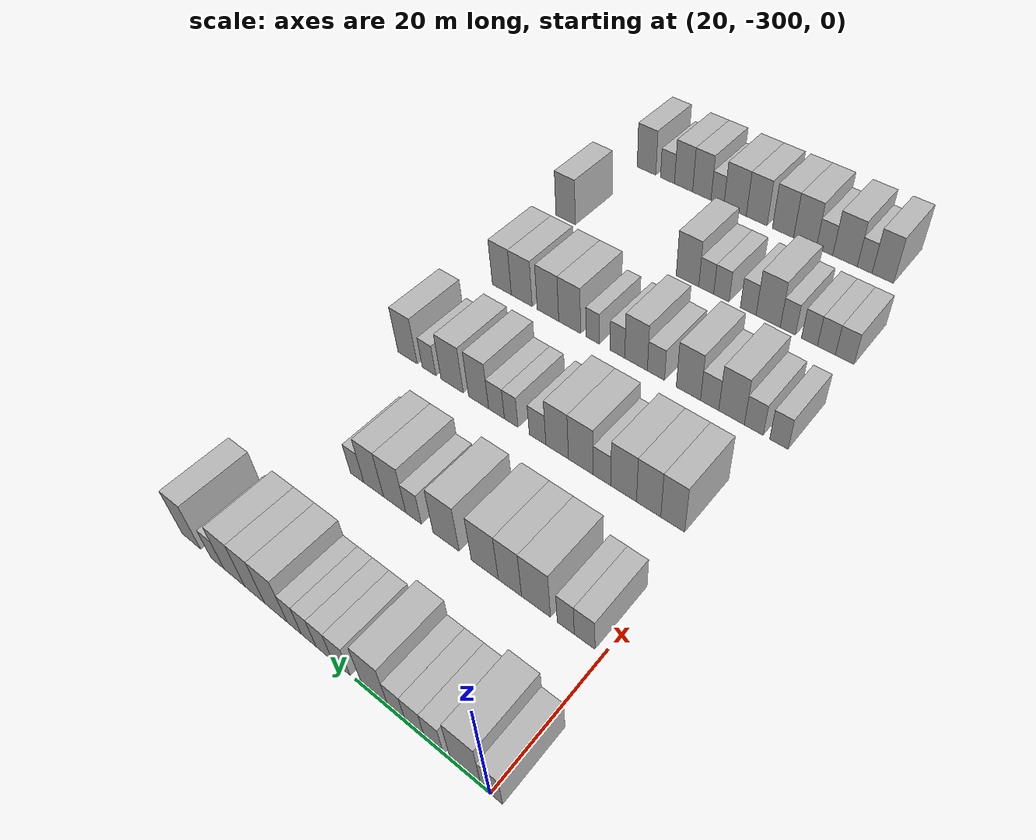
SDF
<sdf version="1.6">
 <world name="default">
  <model name="building_13">
   <static>1</static>
   <pose>25.0000 -300.2134 0 0.000000 0.000000 0.000000</pose>
   <link name="link">
    <pose>0 0 3.00 0 0 0</pose>
    <collision name="collision"><geometry><box><size>10.0000 2.9440 6.0000</size></box></geometry></collision>
    <visual name="visual">
     <cast_shadows>0</cast_shadows>
     <geometry><box><size>10.0000 2.9440 6.0000</size></box></geometry>
     <material>
      <script>
       <uri>model://HANNAS_wall/materials/scripts</uri>
       <uri>model://HANNAS_wall/materials/textures</uri>
       <name>vrc/HANNAS_wall</name>
      </script>
     </material>
    </visual>
   </link>
  </model>
  <model name="building_14">
   <static>1</static>
   <pose>25.0000 -296.6027 0 0.000000 0.000000 0.000000</pose>
   <link name="link">
    <pose>0 0 4.50 0 0 0</pose>
    <collision name="collision"><geometry><box><size>10.0000 4.2774 9.0000</size></box></geometry></collision>
    <visual name="visual">
     <cast_shadows>0</cast_shadows>
     <geometry><box><size>10.0000 4.2774 9.0000</size></box></geometry>
     <material>
      <script>
       <uri>model://HANNAS_wall/materials/scripts</uri>
       <uri>model://HANNAS_wall/materials/textures</uri>
       <name>vrc/HANNAS_wall</name>
      </script>
     </material>
    </visual>
   </link>
  </model>
  <model name="building_15">
   <static>1</static>
   <pose>25.0000 -292.1122 0 0.000000 0.000000 0.000000</pose>
   <link name="link">
    <pose>0 0 3.00 0 0 0</pose>
    <collision name="collision"><geometry><box><size>10.0000 2.7037 6.0000</size></box></geometry></collision>
    <visual name="visual">
     <cast_shadows>0</cast_shadows>
     <geometry><box><size>10.0000 2.7037 6.0000</size></box></geometry>
     <material>
      <script>
       <uri>model://HANNAS_wall/materials/scripts</uri>
       <uri>model://HANNAS_wall/materials/textures</uri>
       <name>vrc/HANNAS_wall</name>
      </script>
     </material>
    </visual>
   </link>
  </model>
  <model name="building_16">
   <static>1</static>
   <pose>25.0000 -289.3489 0 0.000000 0.000000 0.000000</pose>
   <link name="link">
    <pose>0 0 3.00 0 0 0</pose>
    <collision name="collision"><geometry><box><size>10.0000 2.8229 6.0000</size></box></geometry></collision>
    <visual name="visual">
     <cast_shadows>0</cast_shadows>
     <geometry><box><size>10.0000 2.8229 6.0000</size></box></geometry>
     <material>
      <script>
       <uri>model://HANNAS_wall/materials/scripts</uri>
       <uri>model://HANNAS_wall/materials/textures</uri>
       <name>vrc/HANNAS_wall</name>
      </script>
     </material>
    </visual>
   </link>
  </model>
  <model name="building_17">
   <static>1</static>
   <pose>25.0000 -286.6313 0 0.000000 0.000000 0.000000</pose>
   <link name="link">
    <pose>0 0 3.00 0 0 0</pose>
    <collision name="collision"><geometry><box><size>10.0000 2.6121 6.0000</size></box></geometry></collision>
    <visual name="visual">
     <cast_shadows>0</cast_shadows>
     <geometry><box><size>10.0000 2.6121 6.0000</size></box></geometry>
     <material>
      <script>
       <uri>model://HANNAS_wall/materials/scripts</uri>
       <uri>model://HANNAS_wall/materials/textures</uri>
       <name>vrc/HANNAS_wall</name>
      </script>
     </material>
    </visual>
   </link>
  </model>
  <model name="building_18">
   <static>1</static>
   <pose>25.0000 -283.2771 0 0.000000 0.000000 0.000000</pose>
   <link name="link">
    <pose>0 0 4.50 0 0 0</pose>
    <collision name="collision"><geometry><box><size>10.0000 4.0963 9.0000</size></box></geometry></collision>
    <visual name="visual">
     <cast_shadows>0</cast_shadows>
     <geometry><box><size>10.0000 4.0963 9.0000</size></box></geometry>
     <material>
      <script>
       <uri>model://HANNAS_wall/materials/scripts</uri>
       <uri>model://HANNAS_wall/materials/textures</uri>
       <name>vrc/HANNAS_wall</name>
      </script>
     </material>
    </visual>
   </link>
  </model>
  <model name="building_19">
   <static>1</static>
   <pose>25.0000 -277.7776 0 0.000000 0.000000 0.000000</pose>
   <link name="link">
    <pose>0 0 3.00 0 0 0</pose>
    <collision name="collision"><geometry><box><size>10.0000 2.9027 6.0000</size></box></geometry></collision>
    <visual name="visual">
     <cast_shadows>0</cast_shadows>
     <geometry><box><size>10.0000 2.9027 6.0000</size></box></geometry>
     <material>
      <script>
       <uri>model://HANNAS_wall/materials/scripts</uri>
       <uri>model://HANNAS_wall/materials/textures</uri>
       <name>vrc/HANNAS_wall</name>
      </script>
     </material>
    </visual>
   </link>
  </model>
  <model name="building_20">
   <static>1</static>
   <pose>25.0000 -274.9839 0 0.000000 0.000000 0.000000</pose>
   <link name="link">
    <pose>0 0 3.00 0 0 0</pose>
    <collision name="collision"><geometry><box><size>10.0000 2.6849 6.0000</size></box></geometry></collision>
    <visual name="visual">
     <cast_shadows>0</cast_shadows>
     <geometry><box><size>10.0000 2.6849 6.0000</size></box></geometry>
     <material>
      <script>
       <uri>model://HANNAS_wall/materials/scripts</uri>
       <uri>model://HANNAS_wall/materials/textures</uri>
       <name>vrc/HANNAS_wall</name>
      </script>
     </material>
    </visual>
   </link>
  </model>
  <model name="building_21">
   <static>1</static>
   <pose>25.0000 -272.4067 0 0.000000 0.000000 0.000000</pose>
   <link name="link">
    <pose>0 0 3.00 0 0 0</pose>
    <collision name="collision"><geometry><box><size>10.0000 2.4694 6.0000</size></box></geometry></collision>
    <visual name="visual">
     <cast_shadows>0</cast_shadows>
     <geometry><box><size>10.0000 2.4694 6.0000</size></box></geometry>
     <material>
      <script>
       <uri>model://HANNAS_wall/materials/scripts</uri>
       <uri>model://HANNAS_wall/materials/textures</uri>
       <name>vrc/HANNAS_wall</name>
      </script>
     </material>
    </visual>
   </link>
  </model>
  <model name="building_22">
   <static>1</static>
   <pose>25.0000 -269.9528 0 0.000000 0.000000 0.000000</pose>
   <link name="link">
    <pose>0 0 3.00 0 0 0</pose>
    <collision name="collision"><geometry><box><size>10.0000 2.4384 6.0000</size></box></geometry></collision>
    <visual name="visual">
     <cast_shadows>0</cast_shadows>
     <geometry><box><size>10.0000 2.4384 6.0000</size></box></geometry>
     <material>
      <script>
       <uri>model://HANNAS_wall/materials/scripts</uri>
       <uri>model://HANNAS_wall/materials/textures</uri>
       <name>vrc/HANNAS_wall</name>
      </script>
     </material>
    </visual>
   </link>
  </model>
  <model name="building_23">
   <static>1</static>
   <pose>25.0000 -266.7361 0 0.000000 0.000000 0.000000</pose>
   <link name="link">
    <pose>0 0 4.50 0 0 0</pose>
    <collision name="collision"><geometry><box><size>10.0000 3.9950 9.0000</size></box></geometry></collision>
    <visual name="visual">
     <cast_shadows>0</cast_shadows>
     <geometry><box><size>10.0000 3.9950 9.0000</size></box></geometry>
     <material>
      <script>
       <uri>model://HANNAS_wall/materials/scripts</uri>
       <uri>model://HANNAS_wall/materials/textures</uri>
       <name>vrc/HANNAS_wall</name>
      </script>
     </material>
    </visual>
   </link>
  </model>
  <model name="building_24">
   <static>1</static>
   <pose>25.0000 -262.9352 0 0.000000 0.000000 0.000000</pose>
   <link name="link">
    <pose>0 0 4.50 0 0 0</pose>
    <collision name="collision"><geometry><box><size>10.0000 3.6069 9.0000</size></box></geometry></collision>
    <visual name="visual">
     <cast_shadows>0</cast_shadows>
     <geometry><box><size>10.0000 3.6069 9.0000</size></box></geometry>
     <material>
      <script>
       <uri>model://HANNAS_wall/materials/scripts</uri>
       <uri>model://HANNAS_wall/materials/textures</uri>
       <name>vrc/HANNAS_wall</name>
      </script>
     </material>
    </visual>
   </link>
  </model>
  <model name="building_25">
   <static>1</static>
   <pose>25.0000 -259.1891 0 0.000000 0.000000 0.000000</pose>
   <link name="link">
    <pose>0 0 4.50 0 0 0</pose>
    <collision name="collision"><geometry><box><size>10.0000 3.8851 9.0000</size></box></geometry></collision>
    <visual name="visual">
     <cast_shadows>0</cast_shadows>
     <geometry><box><size>10.0000 3.8851 9.0000</size></box></geometry>
     <material>
      <script>
       <uri>model://HANNAS_wall/materials/scripts</uri>
       <uri>model://HANNAS_wall/materials/textures</uri>
       <name>vrc/HANNAS_wall</name>
      </script>
     </material>
    </visual>
   </link>
  </model>
  <model name="building_26">
   <static>1</static>
   <pose>25.0000 -255.9950 0 0.000000 0.000000 0.000000</pose>
   <link name="link">
    <pose>0 0 3.00 0 0 0</pose>
    <collision name="collision"><geometry><box><size>10.0000 2.5032 6.0000</size></box></geometry></collision>
    <visual name="visual">
     <cast_shadows>0</cast_shadows>
     <geometry><box><size>10.0000 2.5032 6.0000</size></box></geometry>
     <material>
      <script>
       <uri>model://HANNAS_wall/materials/scripts</uri>
       <uri>model://HANNAS_wall/materials/textures</uri>
       <name>vrc/HANNAS_wall</name>
      </script>
     </material>
    </visual>
   </link>
  </model>
  <model name="building_27">
   <static>1</static>
   <pose>25.0000 -250.9259 0 0.000000 0.000000 0.000000</pose>
   <link name="link">
    <pose>0 0 4.50 0 0 0</pose>
    <collision name="collision"><geometry><box><size>10.0000 3.6349 9.0000</size></box></geometry></collision>
    <visual name="visual">
     <cast_shadows>0</cast_shadows>
     <geometry><box><size>10.0000 3.6349 9.0000</size></box></geometry>
     <material>
      <script>
       <uri>model://HANNAS_wall/materials/scripts</uri>
       <uri>model://HANNAS_wall/materials/textures</uri>
       <name>vrc/HANNAS_wall</name>
      </script>
     </material>
    </visual>
   </link>
  </model>
  <model name="building_181">
   <static>1</static>
   <pose>44.0000 -297.2421 0 0.000000 0.000000 0.000000</pose>
   <link name="link">
    <pose>0 0 3.00 0 0 0</pose>
    <collision name="collision"><geometry><box><size>10.0000 2.9973 6.0000</size></box></geometry></collision>
    <visual name="visual">
     <cast_shadows>0</cast_shadows>
     <geometry><box><size>10.0000 2.9973 6.0000</size></box></geometry>
     <material>
      <script>
       <uri>model://HANNAS_wall/materials/scripts</uri>
       <uri>model://HANNAS_wall/materials/textures</uri>
       <name>vrc/HANNAS_wall</name>
      </script>
     </material>
    </visual>
   </link>
  </model>
  <model name="building_182">
   <static>1</static>
   <pose>44.0000 -294.4923 0 0.000000 0.000000 0.000000</pose>
   <link name="link">
    <pose>0 0 3.00 0 0 0</pose>
    <collision name="collision"><geometry><box><size>10.0000 2.5022 6.0000</size></box></geometry></collision>
    <visual name="visual">
     <cast_shadows>0</cast_shadows>
     <geometry><box><size>10.0000 2.5022 6.0000</size></box></geometry>
     <material>
      <script>
       <uri>model://HANNAS_wall/materials/scripts</uri>
       <uri>model://HANNAS_wall/materials/textures</uri>
       <name>vrc/HANNAS_wall</name>
      </script>
     </material>
    </visual>
   </link>
  </model>
  <model name="building_183">
   <static>1</static>
   <pose>44.0000 -290.0426 0 0.000000 0.000000 0.000000</pose>
   <link name="link">
    <pose>0 0 4.50 0 0 0</pose>
    <collision name="collision"><geometry><box><size>10.0000 4.3972 9.0000</size></box></geometry></collision>
    <visual name="visual">
     <cast_shadows>0</cast_shadows>
     <geometry><box><size>10.0000 4.3972 9.0000</size></box></geometry>
     <material>
      <script>
       <uri>model://HANNAS_wall/materials/scripts</uri>
       <uri>model://HANNAS_wall/materials/textures</uri>
       <name>vrc/HANNAS_wall</name>
      </script>
     </material>
    </visual>
   </link>
  </model>
  <model name="building_184">
   <static>1</static>
   <pose>44.0000 -286.0173 0 0.000000 0.000000 0.000000</pose>
   <link name="link">
    <pose>0 0 4.50 0 0 0</pose>
    <collision name="collision"><geometry><box><size>10.0000 3.6533 9.0000</size></box></geometry></collision>
    <visual name="visual">
     <cast_shadows>0</cast_shadows>
     <geometry><box><size>10.0000 3.6533 9.0000</size></box></geometry>
     <material>
      <script>
       <uri>model://HANNAS_wall/materials/scripts</uri>
       <uri>model://HANNAS_wall/materials/textures</uri>
       <name>vrc/HANNAS_wall</name>
      </script>
     </material>
    </visual>
   </link>
  </model>
  <model name="building_185">
   <static>1</static>
   <pose>44.0000 -282.0243 0 0.000000 0.000000 0.000000</pose>
   <link name="link">
    <pose>0 0 4.50 0 0 0</pose>
    <collision name="collision"><geometry><box><size>10.0000 4.3327 9.0000</size></box></geometry></collision>
    <visual name="visual">
     <cast_shadows>0</cast_shadows>
     <geometry><box><size>10.0000 4.3327 9.0000</size></box></geometry>
     <material>
      <script>
       <uri>model://HANNAS_wall/materials/scripts</uri>
       <uri>model://HANNAS_wall/materials/textures</uri>
       <name>vrc/HANNAS_wall</name>
      </script>
     </material>
    </visual>
   </link>
  </model>
  <model name="building_186">
   <static>1</static>
   <pose>44.0000 -275.6644 0 0.000000 0.000000 0.000000</pose>
   <link name="link">
    <pose>0 0 4.50 0 0 0</pose>
    <collision name="collision"><geometry><box><size>10.0000 4.3871 9.0000</size></box></geometry></collision>
    <visual name="visual">
     <cast_shadows>0</cast_shadows>
     <geometry><box><size>10.0000 4.3871 9.0000</size></box></geometry>
     <material>
      <script>
       <uri>model://HANNAS_wall/materials/scripts</uri>
       <uri>model://HANNAS_wall/materials/textures</uri>
       <name>vrc/HANNAS_wall</name>
      </script>
     </material>
    </visual>
   </link>
  </model>
  <model name="building_187">
   <static>1</static>
   <pose>44.0000 -270.1132 0 0.000000 0.000000 0.000000</pose>
   <link name="link">
    <pose>0 0 3.00 0 0 0</pose>
    <collision name="collision"><geometry><box><size>10.0000 2.7153 6.0000</size></box></geometry></collision>
    <visual name="visual">
     <cast_shadows>0</cast_shadows>
     <geometry><box><size>10.0000 2.7153 6.0000</size></box></geometry>
     <material>
      <script>
       <uri>model://HANNAS_wall/materials/scripts</uri>
       <uri>model://HANNAS_wall/materials/textures</uri>
       <name>vrc/HANNAS_wall</name>
      </script>
     </material>
    </visual>
   </link>
  </model>
  <model name="building_188">
   <static>1</static>
   <pose>44.0000 -266.7561 0 0.000000 0.000000 0.000000</pose>
   <link name="link">
    <pose>0 0 4.50 0 0 0</pose>
    <collision name="collision"><geometry><box><size>10.0000 3.9988 9.0000</size></box></geometry></collision>
    <visual name="visual">
     <cast_shadows>0</cast_shadows>
     <geometry><box><size>10.0000 3.9988 9.0000</size></box></geometry>
     <material>
      <script>
       <uri>model://HANNAS_wall/materials/scripts</uri>
       <uri>model://HANNAS_wall/materials/textures</uri>
       <name>vrc/HANNAS_wall</name>
      </script>
     </material>
    </visual>
   </link>
  </model>
  <model name="building_189">
   <static>1</static>
   <pose>44.0000 -262.9482 0 0.000000 0.000000 0.000000</pose>
   <link name="link">
    <pose>0 0 4.50 0 0 0</pose>
    <collision name="collision"><geometry><box><size>10.0000 3.6169 9.0000</size></box></geometry></collision>
    <visual name="visual">
     <cast_shadows>0</cast_shadows>
     <geometry><box><size>10.0000 3.6169 9.0000</size></box></geometry>
     <material>
      <script>
       <uri>model://HANNAS_wall/materials/scripts</uri>
       <uri>model://HANNAS_wall/materials/textures</uri>
       <name>vrc/HANNAS_wall</name>
      </script>
     </material>
    </visual>
   </link>
  </model>
  <model name="building_190">
   <static>1</static>
   <pose>44.0000 -259.8969 0 0.000000 0.000000 0.000000</pose>
   <link name="link">
    <pose>0 0 3.00 0 0 0</pose>
    <collision name="collision"><geometry><box><size>10.0000 2.4858 6.0000</size></box></geometry></collision>
    <visual name="visual">
     <cast_shadows>0</cast_shadows>
     <geometry><box><size>10.0000 2.4858 6.0000</size></box></geometry>
     <material>
      <script>
       <uri>model://HANNAS_wall/materials/scripts</uri>
       <uri>model://HANNAS_wall/materials/textures</uri>
       <name>vrc/HANNAS_wall</name>
      </script>
     </material>
    </visual>
   </link>
  </model>
  <model name="building_358">
   <static>1</static>
   <pose>63.0000 -296.1791 0 0.000000 0.000000 0.000000</pose>
   <link name="link">
    <pose>0 0 4.50 0 0 0</pose>
    <collision name="collision"><geometry><box><size>10.0000 3.6176 9.0000</size></box></geometry></collision>
    <visual name="visual">
     <cast_shadows>0</cast_shadows>
     <geometry><box><size>10.0000 3.6176 9.0000</size></box></geometry>
     <material>
      <script>
       <uri>model://HANNAS_wall/materials/scripts</uri>
       <uri>model://HANNAS_wall/materials/textures</uri>
       <name>vrc/HANNAS_wall</name>
      </script>
     </material>
    </visual>
   </link>
  </model>
  <model name="building_359">
   <static>1</static>
   <pose>63.0000 -292.4878 0 0.000000 0.000000 0.000000</pose>
   <link name="link">
    <pose>0 0 4.50 0 0 0</pose>
    <collision name="collision"><geometry><box><size>10.0000 3.7651 9.0000</size></box></geometry></collision>
    <visual name="visual">
     <cast_shadows>0</cast_shadows>
     <geometry><box><size>10.0000 3.7651 9.0000</size></box></geometry>
     <material>
      <script>
       <uri>model://HANNAS_wall/materials/scripts</uri>
       <uri>model://HANNAS_wall/materials/textures</uri>
       <name>vrc/HANNAS_wall</name>
      </script>
     </material>
    </visual>
   </link>
  </model>
  <model name="building_360">
   <static>1</static>
   <pose>63.0000 -288.5728 0 0.000000 0.000000 0.000000</pose>
   <link name="link">
    <pose>0 0 4.50 0 0 0</pose>
    <collision name="collision"><geometry><box><size>10.0000 4.0650 9.0000</size></box></geometry></collision>
    <visual name="visual">
     <cast_shadows>0</cast_shadows>
     <geometry><box><size>10.0000 4.0650 9.0000</size></box></geometry>
     <material>
      <script>
       <uri>model://HANNAS_wall/materials/scripts</uri>
       <uri>model://HANNAS_wall/materials/textures</uri>
       <name>vrc/HANNAS_wall</name>
      </script>
     </material>
    </visual>
   </link>
  </model>
  <model name="building_361">
   <static>1</static>
   <pose>63.0000 -285.1097 0 0.000000 0.000000 0.000000</pose>
   <link name="link">
    <pose>0 0 3.00 0 0 0</pose>
    <collision name="collision"><geometry><box><size>10.0000 2.8613 6.0000</size></box></geometry></collision>
    <visual name="visual">
     <cast_shadows>0</cast_shadows>
     <geometry><box><size>10.0000 2.8613 6.0000</size></box></geometry>
     <material>
      <script>
       <uri>model://HANNAS_wall/materials/scripts</uri>
       <uri>model://HANNAS_wall/materials/textures</uri>
       <name>vrc/HANNAS_wall</name>
      </script>
     </material>
    </visual>
   </link>
  </model>
  <model name="building_362">
   <static>1</static>
   <pose>63.0000 -281.6233 0 0.000000 0.000000 0.000000</pose>
   <link name="link">
    <pose>0 0 4.50 0 0 0</pose>
    <collision name="collision"><geometry><box><size>10.0000 4.1114 9.0000</size></box></geometry></collision>
    <visual name="visual">
     <cast_shadows>0</cast_shadows>
     <geometry><box><size>10.0000 4.1114 9.0000</size></box></geometry>
     <material>
      <script>
       <uri>model://HANNAS_wall/materials/scripts</uri>
       <uri>model://HANNAS_wall/materials/textures</uri>
       <name>vrc/HANNAS_wall</name>
      </script>
     </material>
    </visual>
   </link>
  </model>
  <model name="building_363">
   <static>1</static>
   <pose>63.0000 -277.6504 0 0.000000 0.000000 0.000000</pose>
   <link name="link">
    <pose>0 0 4.50 0 0 0</pose>
    <collision name="collision"><geometry><box><size>10.0000 3.8344 9.0000</size></box></geometry></collision>
    <visual name="visual">
     <cast_shadows>0</cast_shadows>
     <geometry><box><size>10.0000 3.8344 9.0000</size></box></geometry>
     <material>
      <script>
       <uri>model://HANNAS_wall/materials/scripts</uri>
       <uri>model://HANNAS_wall/materials/textures</uri>
       <name>vrc/HANNAS_wall</name>
      </script>
     </material>
    </visual>
   </link>
  </model>
  <model name="building_364">
   <static>1</static>
   <pose>63.0000 -274.2875 0 0.000000 0.000000 0.000000</pose>
   <link name="link">
    <pose>0 0 3.00 0 0 0</pose>
    <collision name="collision"><geometry><box><size>10.0000 2.8913 6.0000</size></box></geometry></collision>
    <visual name="visual">
     <cast_shadows>0</cast_shadows>
     <geometry><box><size>10.0000 2.8913 6.0000</size></box></geometry>
     <material>
      <script>
       <uri>model://HANNAS_wall/materials/scripts</uri>
       <uri>model://HANNAS_wall/materials/textures</uri>
       <name>vrc/HANNAS_wall</name>
      </script>
     </material>
    </visual>
   </link>
  </model>
  <model name="building_365">
   <static>1</static>
   <pose>63.0000 -269.6263 0 0.000000 0.000000 0.000000</pose>
   <link name="link">
    <pose>0 0 3.00 0 0 0</pose>
    <collision name="collision"><geometry><box><size>10.0000 2.4312 6.0000</size></box></geometry></collision>
    <visual name="visual">
     <cast_shadows>0</cast_shadows>
     <geometry><box><size>10.0000 2.4312 6.0000</size></box></geometry>
     <material>
      <script>
       <uri>model://HANNAS_wall/materials/scripts</uri>
       <uri>model://HANNAS_wall/materials/textures</uri>
       <name>vrc/HANNAS_wall</name>
      </script>
     </material>
    </visual>
   </link>
  </model>
  <model name="building_366">
   <static>1</static>
   <pose>63.0000 -266.9727 0 0.000000 0.000000 0.000000</pose>
   <link name="link">
    <pose>0 0 3.00 0 0 0</pose>
    <collision name="collision"><geometry><box><size>10.0000 2.8760 6.0000</size></box></geometry></collision>
    <visual name="visual">
     <cast_shadows>0</cast_shadows>
     <geometry><box><size>10.0000 2.8760 6.0000</size></box></geometry>
     <material>
      <script>
       <uri>model://HANNAS_wall/materials/scripts</uri>
       <uri>model://HANNAS_wall/materials/textures</uri>
       <name>vrc/HANNAS_wall</name>
      </script>
     </material>
    </visual>
   </link>
  </model>
  <model name="building_367">
   <static>1</static>
   <pose>63.0000 -263.6711 0 0.000000 0.000000 0.000000</pose>
   <link name="link">
    <pose>0 0 4.50 0 0 0</pose>
    <collision name="collision"><geometry><box><size>10.0000 3.7272 9.0000</size></box></geometry></collision>
    <visual name="visual">
     <cast_shadows>0</cast_shadows>
     <geometry><box><size>10.0000 3.7272 9.0000</size></box></geometry>
     <material>
      <script>
       <uri>model://HANNAS_wall/materials/scripts</uri>
       <uri>model://HANNAS_wall/materials/textures</uri>
       <name>vrc/HANNAS_wall</name>
      </script>
     </material>
    </visual>
   </link>
  </model>
  <model name="building_368">
   <static>1</static>
   <pose>63.0000 -258.6757 0 0.000000 0.000000 0.000000</pose>
   <link name="link">
    <pose>0 0 4.50 0 0 0</pose>
    <collision name="collision"><geometry><box><size>10.0000 4.2636 9.0000</size></box></geometry></collision>
    <visual name="visual">
     <cast_shadows>0</cast_shadows>
     <geometry><box><size>10.0000 4.2636 9.0000</size></box></geometry>
     <material>
      <script>
       <uri>model://HANNAS_wall/materials/scripts</uri>
       <uri>model://HANNAS_wall/materials/textures</uri>
       <name>vrc/HANNAS_wall</name>
      </script>
     </material>
    </visual>
   </link>
  </model>
  <model name="building_369">
   <static>1</static>
   <pose>63.0000 -254.2039 0 0.000000 0.000000 0.000000</pose>
   <link name="link">
    <pose>0 0 3.00 0 0 0</pose>
    <collision name="collision"><geometry><box><size>10.0000 2.6799 6.0000</size></box></geometry></collision>
    <visual name="visual">
     <cast_shadows>0</cast_shadows>
     <geometry><box><size>10.0000 2.6799 6.0000</size></box></geometry>
     <material>
      <script>
       <uri>model://HANNAS_wall/materials/scripts</uri>
       <uri>model://HANNAS_wall/materials/textures</uri>
       <name>vrc/HANNAS_wall</name>
      </script>
     </material>
    </visual>
   </link>
  </model>
  <model name="building_370">
   <static>1</static>
   <pose>63.0000 -249.9313 0 0.000000 0.000000 0.000000</pose>
   <link name="link">
    <pose>0 0 4.50 0 0 0</pose>
    <collision name="collision"><geometry><box><size>10.0000 3.8652 9.0000</size></box></geometry></collision>
    <visual name="visual">
     <cast_shadows>0</cast_shadows>
     <geometry><box><size>10.0000 3.8652 9.0000</size></box></geometry>
     <material>
      <script>
       <uri>model://HANNAS_wall/materials/scripts</uri>
       <uri>model://HANNAS_wall/materials/textures</uri>
       <name>vrc/HANNAS_wall</name>
      </script>
     </material>
    </visual>
   </link>
  </model>
  <model name="building_519">
   <static>1</static>
   <pose>82.0000 -300.1293 0 0.000000 0.000000 0.000000</pose>
   <link name="link">
    <pose>0 0 3.00 0 0 0</pose>
    <collision name="collision"><geometry><box><size>10.0000 2.8351 6.0000</size></box></geometry></collision>
    <visual name="visual">
     <cast_shadows>0</cast_shadows>
     <geometry><box><size>10.0000 2.8351 6.0000</size></box></geometry>
     <material>
      <script>
       <uri>model://HANNAS_wall/materials/scripts</uri>
       <uri>model://HANNAS_wall/materials/textures</uri>
       <name>vrc/HANNAS_wall</name>
      </script>
     </material>
    </visual>
   </link>
  </model>
  <model name="building_520">
   <static>1</static>
   <pose>82.0000 -296.2295 0 0.000000 0.000000 0.000000</pose>
   <link name="link">
    <pose>0 0 3.00 0 0 0</pose>
    <collision name="collision"><geometry><box><size>10.0000 2.9644 6.0000</size></box></geometry></collision>
    <visual name="visual">
     <cast_shadows>0</cast_shadows>
     <geometry><box><size>10.0000 2.9644 6.0000</size></box></geometry>
     <material>
      <script>
       <uri>model://HANNAS_wall/materials/scripts</uri>
       <uri>model://HANNAS_wall/materials/textures</uri>
       <name>vrc/HANNAS_wall</name>
      </script>
     </material>
    </visual>
   </link>
  </model>
  <model name="building_521">
   <static>1</static>
   <pose>82.0000 -292.6867 0 0.000000 0.000000 0.000000</pose>
   <link name="link">
    <pose>0 0 4.50 0 0 0</pose>
    <collision name="collision"><geometry><box><size>10.0000 4.1214 9.0000</size></box></geometry></collision>
    <visual name="visual">
     <cast_shadows>0</cast_shadows>
     <geometry><box><size>10.0000 4.1214 9.0000</size></box></geometry>
     <material>
      <script>
       <uri>model://HANNAS_wall/materials/scripts</uri>
       <uri>model://HANNAS_wall/materials/textures</uri>
       <name>vrc/HANNAS_wall</name>
      </script>
     </material>
    </visual>
   </link>
  </model>
  <model name="building_522">
   <static>1</static>
   <pose>82.0000 -289.1311 0 0.000000 0.000000 0.000000</pose>
   <link name="link">
    <pose>0 0 3.00 0 0 0</pose>
    <collision name="collision"><geometry><box><size>10.0000 2.9898 6.0000</size></box></geometry></collision>
    <visual name="visual">
     <cast_shadows>0</cast_shadows>
     <geometry><box><size>10.0000 2.9898 6.0000</size></box></geometry>
     <material>
      <script>
       <uri>model://HANNAS_wall/materials/scripts</uri>
       <uri>model://HANNAS_wall/materials/textures</uri>
       <name>vrc/HANNAS_wall</name>
      </script>
     </material>
    </visual>
   </link>
  </model>
  <model name="building_523">
   <static>1</static>
   <pose>82.0000 -285.6082 0 0.000000 0.000000 0.000000</pose>
   <link name="link">
    <pose>0 0 4.50 0 0 0</pose>
    <collision name="collision"><geometry><box><size>10.0000 4.0559 9.0000</size></box></geometry></collision>
    <visual name="visual">
     <cast_shadows>0</cast_shadows>
     <geometry><box><size>10.0000 4.0559 9.0000</size></box></geometry>
     <material>
      <script>
       <uri>model://HANNAS_wall/materials/scripts</uri>
       <uri>model://HANNAS_wall/materials/textures</uri>
       <name>vrc/HANNAS_wall</name>
      </script>
     </material>
    </visual>
   </link>
  </model>
  <model name="building_524">
   <static>1</static>
   <pose>82.0000 -280.0912 0 0.000000 0.000000 0.000000</pose>
   <link name="link">
    <pose>0 0 3.00 0 0 0</pose>
    <collision name="collision"><geometry><box><size>10.0000 2.9782 6.0000</size></box></geometry></collision>
    <visual name="visual">
     <cast_shadows>0</cast_shadows>
     <geometry><box><size>10.0000 2.9782 6.0000</size></box></geometry>
     <material>
      <script>
       <uri>model://HANNAS_wall/materials/scripts</uri>
       <uri>model://HANNAS_wall/materials/textures</uri>
       <name>vrc/HANNAS_wall</name>
      </script>
     </material>
    </visual>
   </link>
  </model>
  <model name="building_525">
   <static>1</static>
   <pose>82.0000 -276.6095 0 0.000000 0.000000 0.000000</pose>
   <link name="link">
    <pose>0 0 4.50 0 0 0</pose>
    <collision name="collision"><geometry><box><size>10.0000 3.9851 9.0000</size></box></geometry></collision>
    <visual name="visual">
     <cast_shadows>0</cast_shadows>
     <geometry><box><size>10.0000 3.9851 9.0000</size></box></geometry>
     <material>
      <script>
       <uri>model://HANNAS_wall/materials/scripts</uri>
       <uri>model://HANNAS_wall/materials/textures</uri>
       <name>vrc/HANNAS_wall</name>
      </script>
     </material>
    </visual>
   </link>
  </model>
  <model name="building_526">
   <static>1</static>
   <pose>82.0000 -273.3057 0 0.000000 0.000000 0.000000</pose>
   <link name="link">
    <pose>0 0 3.00 0 0 0</pose>
    <collision name="collision"><geometry><box><size>10.0000 2.6226 6.0000</size></box></geometry></collision>
    <visual name="visual">
     <cast_shadows>0</cast_shadows>
     <geometry><box><size>10.0000 2.6226 6.0000</size></box></geometry>
     <material>
      <script>
       <uri>model://HANNAS_wall/materials/scripts</uri>
       <uri>model://HANNAS_wall/materials/textures</uri>
       <name>vrc/HANNAS_wall</name>
      </script>
     </material>
    </visual>
   </link>
  </model>
  <model name="building_527">
   <static>1</static>
   <pose>82.0000 -268.7708 0 0.000000 0.000000 0.000000</pose>
   <link name="link">
    <pose>0 0 3.00 0 0 0</pose>
    <collision name="collision"><geometry><box><size>10.0000 2.4472 6.0000</size></box></geometry></collision>
    <visual name="visual">
     <cast_shadows>0</cast_shadows>
     <geometry><box><size>10.0000 2.4472 6.0000</size></box></geometry>
     <material>
      <script>
       <uri>model://HANNAS_wall/materials/scripts</uri>
       <uri>model://HANNAS_wall/materials/textures</uri>
       <name>vrc/HANNAS_wall</name>
      </script>
     </material>
    </visual>
   </link>
  </model>
  <model name="building_528">
   <static>1</static>
   <pose>82.0000 -264.4676 0 0.000000 0.000000 0.000000</pose>
   <link name="link">
    <pose>0 0 4.50 0 0 0</pose>
    <collision name="collision"><geometry><box><size>10.0000 4.1592 9.0000</size></box></geometry></collision>
    <visual name="visual">
     <cast_shadows>0</cast_shadows>
     <geometry><box><size>10.0000 4.1592 9.0000</size></box></geometry>
     <material>
      <script>
       <uri>model://HANNAS_wall/materials/scripts</uri>
       <uri>model://HANNAS_wall/materials/textures</uri>
       <name>vrc/HANNAS_wall</name>
      </script>
     </material>
    </visual>
   </link>
  </model>
  <model name="building_529">
   <static>1</static>
   <pose>82.0000 -260.3099 0 0.000000 0.000000 0.000000</pose>
   <link name="link">
    <pose>0 0 4.50 0 0 0</pose>
    <collision name="collision"><geometry><box><size>10.0000 4.1563 9.0000</size></box></geometry></collision>
    <visual name="visual">
     <cast_shadows>0</cast_shadows>
     <geometry><box><size>10.0000 4.1563 9.0000</size></box></geometry>
     <material>
      <script>
       <uri>model://HANNAS_wall/materials/scripts</uri>
       <uri>model://HANNAS_wall/materials/textures</uri>
       <name>vrc/HANNAS_wall</name>
      </script>
     </material>
    </visual>
   </link>
  </model>
  <model name="building_530">
   <static>1</static>
   <pose>82.0000 -255.1439 0 0.000000 0.000000 0.000000</pose>
   <link name="link">
    <pose>0 0 4.50 0 0 0</pose>
    <collision name="collision"><geometry><box><size>10.0000 4.1755 9.0000</size></box></geometry></collision>
    <visual name="visual">
     <cast_shadows>0</cast_shadows>
     <geometry><box><size>10.0000 4.1755 9.0000</size></box></geometry>
     <material>
      <script>
       <uri>model://HANNAS_wall/materials/scripts</uri>
       <uri>model://HANNAS_wall/materials/textures</uri>
       <name>vrc/HANNAS_wall</name>
      </script>
     </material>
    </visual>
   </link>
  </model>
  <model name="building_531">
   <static>1</static>
   <pose>82.0000 -251.1343 0 0.000000 0.000000 0.000000</pose>
   <link name="link">
    <pose>0 0 4.50 0 0 0</pose>
    <collision name="collision"><geometry><box><size>10.0000 3.8438 9.0000</size></box></geometry></collision>
    <visual name="visual">
     <cast_shadows>0</cast_shadows>
     <geometry><box><size>10.0000 3.8438 9.0000</size></box></geometry>
     <material>
      <script>
       <uri>model://HANNAS_wall/materials/scripts</uri>
       <uri>model://HANNAS_wall/materials/textures</uri>
       <name>vrc/HANNAS_wall</name>
      </script>
     </material>
    </visual>
   </link>
  </model>
  <model name="building_689">
   <static>1</static>
   <pose>101.0000 -299.7341 0 0.000000 0.000000 0.000000</pose>
   <link name="link">
    <pose>0 0 3.00 0 0 0</pose>
    <collision name="collision"><geometry><box><size>10.0000 2.9953 6.0000</size></box></geometry></collision>
    <visual name="visual">
     <cast_shadows>0</cast_shadows>
     <geometry><box><size>10.0000 2.9953 6.0000</size></box></geometry>
     <material>
      <script>
       <uri>model://HANNAS_wall/materials/scripts</uri>
       <uri>model://HANNAS_wall/materials/textures</uri>
       <name>vrc/HANNAS_wall</name>
      </script>
     </material>
    </visual>
   </link>
  </model>
  <model name="building_690">
   <static>1</static>
   <pose>101.0000 -296.7720 0 0.000000 0.000000 0.000000</pose>
   <link name="link">
    <pose>0 0 3.00 0 0 0</pose>
    <collision name="collision"><geometry><box><size>10.0000 2.9289 6.0000</size></box></geometry></collision>
    <visual name="visual">
     <cast_shadows>0</cast_shadows>
     <geometry><box><size>10.0000 2.9289 6.0000</size></box></geometry>
     <material>
      <script>
       <uri>model://HANNAS_wall/materials/scripts</uri>
       <uri>model://HANNAS_wall/materials/textures</uri>
       <name>vrc/HANNAS_wall</name>
      </script>
     </material>
    </visual>
   </link>
  </model>
  <model name="building_691">
   <static>1</static>
   <pose>101.0000 -293.9892 0 0.000000 0.000000 0.000000</pose>
   <link name="link">
    <pose>0 0 3.00 0 0 0</pose>
    <collision name="collision"><geometry><box><size>10.0000 2.6366 6.0000</size></box></geometry></collision>
    <visual name="visual">
     <cast_shadows>0</cast_shadows>
     <geometry><box><size>10.0000 2.6366 6.0000</size></box></geometry>
     <material>
      <script>
       <uri>model://HANNAS_wall/materials/scripts</uri>
       <uri>model://HANNAS_wall/materials/textures</uri>
       <name>vrc/HANNAS_wall</name>
      </script>
     </material>
    </visual>
   </link>
  </model>
  <model name="building_692">
   <static>1</static>
   <pose>101.0000 -290.3832 0 0.000000 0.000000 0.000000</pose>
   <link name="link">
    <pose>0 0 3.00 0 0 0</pose>
    <collision name="collision"><geometry><box><size>10.0000 2.5755 6.0000</size></box></geometry></collision>
    <visual name="visual">
     <cast_shadows>0</cast_shadows>
     <geometry><box><size>10.0000 2.5755 6.0000</size></box></geometry>
     <material>
      <script>
       <uri>model://HANNAS_wall/materials/scripts</uri>
       <uri>model://HANNAS_wall/materials/textures</uri>
       <name>vrc/HANNAS_wall</name>
      </script>
     </material>
    </visual>
   </link>
  </model>
  <model name="building_693">
   <static>1</static>
   <pose>101.0000 -287.0098 0 0.000000 0.000000 0.000000</pose>
   <link name="link">
    <pose>0 0 4.50 0 0 0</pose>
    <collision name="collision"><geometry><box><size>10.0000 4.1713 9.0000</size></box></geometry></collision>
    <visual name="visual">
     <cast_shadows>0</cast_shadows>
     <geometry><box><size>10.0000 4.1713 9.0000</size></box></geometry>
     <material>
      <script>
       <uri>model://HANNAS_wall/materials/scripts</uri>
       <uri>model://HANNAS_wall/materials/textures</uri>
       <name>vrc/HANNAS_wall</name>
      </script>
     </material>
    </visual>
   </link>
  </model>
  <model name="building_694">
   <static>1</static>
   <pose>101.0000 -283.5427 0 0.000000 0.000000 0.000000</pose>
   <link name="link">
    <pose>0 0 3.00 0 0 0</pose>
    <collision name="collision"><geometry><box><size>10.0000 2.7628 6.0000</size></box></geometry></collision>
    <visual name="visual">
     <cast_shadows>0</cast_shadows>
     <geometry><box><size>10.0000 2.7628 6.0000</size></box></geometry>
     <material>
      <script>
       <uri>model://HANNAS_wall/materials/scripts</uri>
       <uri>model://HANNAS_wall/materials/textures</uri>
       <name>vrc/HANNAS_wall</name>
      </script>
     </material>
    </visual>
   </link>
  </model>
  <model name="building_695">
   <static>1</static>
   <pose>101.0000 -278.7711 0 0.000000 0.000000 0.000000</pose>
   <link name="link">
    <pose>0 0 3.00 0 0 0</pose>
    <collision name="collision"><geometry><box><size>10.0000 2.7804 6.0000</size></box></geometry></collision>
    <visual name="visual">
     <cast_shadows>0</cast_shadows>
     <geometry><box><size>10.0000 2.7804 6.0000</size></box></geometry>
     <material>
      <script>
       <uri>model://HANNAS_wall/materials/scripts</uri>
       <uri>model://HANNAS_wall/materials/textures</uri>
       <name>vrc/HANNAS_wall</name>
      </script>
     </material>
    </visual>
   </link>
  </model>
  <model name="building_696">
   <static>1</static>
   <pose>101.0000 -276.0123 0 0.000000 0.000000 0.000000</pose>
   <link name="link">
    <pose>0 0 3.00 0 0 0</pose>
    <collision name="collision"><geometry><box><size>10.0000 2.7373 6.0000</size></box></geometry></collision>
    <visual name="visual">
     <cast_shadows>0</cast_shadows>
     <geometry><box><size>10.0000 2.7373 6.0000</size></box></geometry>
     <material>
      <script>
       <uri>model://HANNAS_wall/materials/scripts</uri>
       <uri>model://HANNAS_wall/materials/textures</uri>
       <name>vrc/HANNAS_wall</name>
      </script>
     </material>
    </visual>
   </link>
  </model>
  <model name="building_697">
   <static>1</static>
   <pose>101.0000 -272.5408 0 0.000000 0.000000 0.000000</pose>
   <link name="link">
    <pose>0 0 4.50 0 0 0</pose>
    <collision name="collision"><geometry><box><size>10.0000 4.2056 9.0000</size></box></geometry></collision>
    <visual name="visual">
     <cast_shadows>0</cast_shadows>
     <geometry><box><size>10.0000 4.2056 9.0000</size></box></geometry>
     <material>
      <script>
       <uri>model://HANNAS_wall/materials/scripts</uri>
       <uri>model://HANNAS_wall/materials/textures</uri>
       <name>vrc/HANNAS_wall</name>
      </script>
     </material>
    </visual>
   </link>
  </model>
  <model name="building_698">
   <static>1</static>
   <pose>101.0000 -248.3164 0 0.000000 0.000000 0.000000</pose>
   <link name="link">
    <pose>0 0 4.50 0 0 0</pose>
    <collision name="collision"><geometry><box><size>10.0000 4.0811 9.0000</size></box></geometry></collision>
    <visual name="visual">
     <cast_shadows>0</cast_shadows>
     <geometry><box><size>10.0000 4.0811 9.0000</size></box></geometry>
     <material>
      <script>
       <uri>model://HANNAS_wall/materials/scripts</uri>
       <uri>model://HANNAS_wall/materials/textures</uri>
       <name>vrc/HANNAS_wall</name>
      </script>
     </material>
    </visual>
   </link>
  </model>
  <model name="building_868">
   <static>1</static>
   <pose>120.0000 -296.1825 0 0.000000 0.000000 0.000000</pose>
   <link name="link">
    <pose>0 0 4.50 0 0 0</pose>
    <collision name="collision"><geometry><box><size>10.0000 3.6567 9.0000</size></box></geometry></collision>
    <visual name="visual">
     <cast_shadows>0</cast_shadows>
     <geometry><box><size>10.0000 3.6567 9.0000</size></box></geometry>
     <material>
      <script>
       <uri>model://HANNAS_wall/materials/scripts</uri>
       <uri>model://HANNAS_wall/materials/textures</uri>
       <name>vrc/HANNAS_wall</name>
      </script>
     </material>
    </visual>
   </link>
  </model>
  <model name="building_869">
   <static>1</static>
   <pose>120.0000 -293.0720 0 0.000000 0.000000 0.000000</pose>
   <link name="link">
    <pose>0 0 3.00 0 0 0</pose>
    <collision name="collision"><geometry><box><size>10.0000 2.5643 6.0000</size></box></geometry></collision>
    <visual name="visual">
     <cast_shadows>0</cast_shadows>
     <geometry><box><size>10.0000 2.5643 6.0000</size></box></geometry>
     <material>
      <script>
       <uri>model://HANNAS_wall/materials/scripts</uri>
       <uri>model://HANNAS_wall/materials/textures</uri>
       <name>vrc/HANNAS_wall</name>
      </script>
     </material>
    </visual>
   </link>
  </model>
  <model name="building_870">
   <static>1</static>
   <pose>120.0000 -289.6229 0 0.000000 0.000000 0.000000</pose>
   <link name="link">
    <pose>0 0 4.50 0 0 0</pose>
    <collision name="collision"><geometry><box><size>10.0000 4.3338 9.0000</size></box></geometry></collision>
    <visual name="visual">
     <cast_shadows>0</cast_shadows>
     <geometry><box><size>10.0000 4.3338 9.0000</size></box></geometry>
     <material>
      <script>
       <uri>model://HANNAS_wall/materials/scripts</uri>
       <uri>model://HANNAS_wall/materials/textures</uri>
       <name>vrc/HANNAS_wall</name>
      </script>
     </material>
    </visual>
   </link>
  </model>
  <model name="building_871">
   <static>1</static>
   <pose>120.0000 -285.9777 0 0.000000 0.000000 0.000000</pose>
   <link name="link">
    <pose>0 0 3.00 0 0 0</pose>
    <collision name="collision"><geometry><box><size>10.0000 2.9566 6.0000</size></box></geometry></collision>
    <visual name="visual">
     <cast_shadows>0</cast_shadows>
     <geometry><box><size>10.0000 2.9566 6.0000</size></box></geometry>
     <material>
      <script>
       <uri>model://HANNAS_wall/materials/scripts</uri>
       <uri>model://HANNAS_wall/materials/textures</uri>
       <name>vrc/HANNAS_wall</name>
      </script>
     </material>
    </visual>
   </link>
  </model>
  <model name="building_872">
   <static>1</static>
   <pose>120.0000 -282.4160 0 0.000000 0.000000 0.000000</pose>
   <link name="link">
    <pose>0 0 4.50 0 0 0</pose>
    <collision name="collision"><geometry><box><size>10.0000 4.1667 9.0000</size></box></geometry></collision>
    <visual name="visual">
     <cast_shadows>0</cast_shadows>
     <geometry><box><size>10.0000 4.1667 9.0000</size></box></geometry>
     <material>
      <script>
       <uri>model://HANNAS_wall/materials/scripts</uri>
       <uri>model://HANNAS_wall/materials/textures</uri>
       <name>vrc/HANNAS_wall</name>
      </script>
     </material>
    </visual>
   </link>
  </model>
  <model name="building_873">
   <static>1</static>
   <pose>120.0000 -278.3500 0 0.000000 0.000000 0.000000</pose>
   <link name="link">
    <pose>0 0 4.50 0 0 0</pose>
    <collision name="collision"><geometry><box><size>10.0000 3.9653 9.0000</size></box></geometry></collision>
    <visual name="visual">
     <cast_shadows>0</cast_shadows>
     <geometry><box><size>10.0000 3.9653 9.0000</size></box></geometry>
     <material>
      <script>
       <uri>model://HANNAS_wall/materials/scripts</uri>
       <uri>model://HANNAS_wall/materials/textures</uri>
       <name>vrc/HANNAS_wall</name>
      </script>
     </material>
    </visual>
   </link>
  </model>
  <model name="building_874">
   <static>1</static>
   <pose>120.0000 -273.3622 0 0.000000 0.000000 0.000000</pose>
   <link name="link">
    <pose>0 0 4.50 0 0 0</pose>
    <collision name="collision"><geometry><box><size>10.0000 4.0103 9.0000</size></box></geometry></collision>
    <visual name="visual">
     <cast_shadows>0</cast_shadows>
     <geometry><box><size>10.0000 4.0103 9.0000</size></box></geometry>
     <material>
      <script>
       <uri>model://HANNAS_wall/materials/scripts</uri>
       <uri>model://HANNAS_wall/materials/textures</uri>
       <name>vrc/HANNAS_wall</name>
      </script>
     </material>
    </visual>
   </link>
  </model>
  <model name="building_875">
   <static>1</static>
   <pose>120.0000 -269.1675 0 0.000000 0.000000 0.000000</pose>
   <link name="link">
    <pose>0 0 4.50 0 0 0</pose>
    <collision name="collision"><geometry><box><size>10.0000 4.3792 9.0000</size></box></geometry></collision>
    <visual name="visual">
     <cast_shadows>0</cast_shadows>
     <geometry><box><size>10.0000 4.3792 9.0000</size></box></geometry>
     <material>
      <script>
       <uri>model://HANNAS_wall/materials/scripts</uri>
       <uri>model://HANNAS_wall/materials/textures</uri>
       <name>vrc/HANNAS_wall</name>
      </script>
     </material>
    </visual>
   </link>
  </model>
  <model name="building_876">
   <static>1</static>
   <pose>120.0000 -265.6943 0 0.000000 0.000000 0.000000</pose>
   <link name="link">
    <pose>0 0 3.00 0 0 0</pose>
    <collision name="collision"><geometry><box><size>10.0000 2.5671 6.0000</size></box></geometry></collision>
    <visual name="visual">
     <cast_shadows>0</cast_shadows>
     <geometry><box><size>10.0000 2.5671 6.0000</size></box></geometry>
     <material>
      <script>
       <uri>model://HANNAS_wall/materials/scripts</uri>
       <uri>model://HANNAS_wall/materials/textures</uri>
       <name>vrc/HANNAS_wall</name>
      </script>
     </material>
    </visual>
   </link>
  </model>
  <model name="building_877">
   <static>1</static>
   <pose>120.0000 -262.5427 0 0.000000 0.000000 0.000000</pose>
   <link name="link">
    <pose>0 0 4.50 0 0 0</pose>
    <collision name="collision"><geometry><box><size>10.0000 3.7362 9.0000</size></box></geometry></collision>
    <visual name="visual">
     <cast_shadows>0</cast_shadows>
     <geometry><box><size>10.0000 3.7362 9.0000</size></box></geometry>
     <material>
      <script>
       <uri>model://HANNAS_wall/materials/scripts</uri>
       <uri>model://HANNAS_wall/materials/textures</uri>
       <name>vrc/HANNAS_wall</name>
      </script>
     </material>
    </visual>
   </link>
  </model>
  <model name="building_878">
   <static>1</static>
   <pose>120.0000 -258.8068 0 0.000000 0.000000 0.000000</pose>
   <link name="link">
    <pose>0 0 4.50 0 0 0</pose>
    <collision name="collision"><geometry><box><size>10.0000 3.7356 9.0000</size></box></geometry></collision>
    <visual name="visual">
     <cast_shadows>0</cast_shadows>
     <geometry><box><size>10.0000 3.7356 9.0000</size></box></geometry>
     <material>
      <script>
       <uri>model://HANNAS_wall/materials/scripts</uri>
       <uri>model://HANNAS_wall/materials/textures</uri>
       <name>vrc/HANNAS_wall</name>
      </script>
     </material>
    </visual>
   </link>
  </model>
  <model name="building_879">
   <static>1</static>
   <pose>120.0000 -255.4774 0 0.000000 0.000000 0.000000</pose>
   <link name="link">
    <pose>0 0 3.00 0 0 0</pose>
    <collision name="collision"><geometry><box><size>10.0000 2.9232 6.0000</size></box></geometry></collision>
    <visual name="visual">
     <cast_shadows>0</cast_shadows>
     <geometry><box><size>10.0000 2.9232 6.0000</size></box></geometry>
     <material>
      <script>
       <uri>model://HANNAS_wall/materials/scripts</uri>
       <uri>model://HANNAS_wall/materials/textures</uri>
       <name>vrc/HANNAS_wall</name>
      </script>
     </material>
    </visual>
   </link>
  </model>
  <model name="building_880">
   <static>1</static>
   <pose>120.0000 -251.0235 0 0.000000 0.000000 0.000000</pose>
   <link name="link">
    <pose>0 0 4.50 0 0 0</pose>
    <collision name="collision"><geometry><box><size>10.0000 3.9847 9.0000</size></box></geometry></collision>
    <visual name="visual">
     <cast_shadows>0</cast_shadows>
     <geometry><box><size>10.0000 3.9847 9.0000</size></box></geometry>
     <material>
      <script>
       <uri>model://HANNAS_wall/materials/scripts</uri>
       <uri>model://HANNAS_wall/materials/textures</uri>
       <name>vrc/HANNAS_wall</name>
      </script>
     </material>
    </visual>
   </link>
  </model>
 </world>
</sdf>
